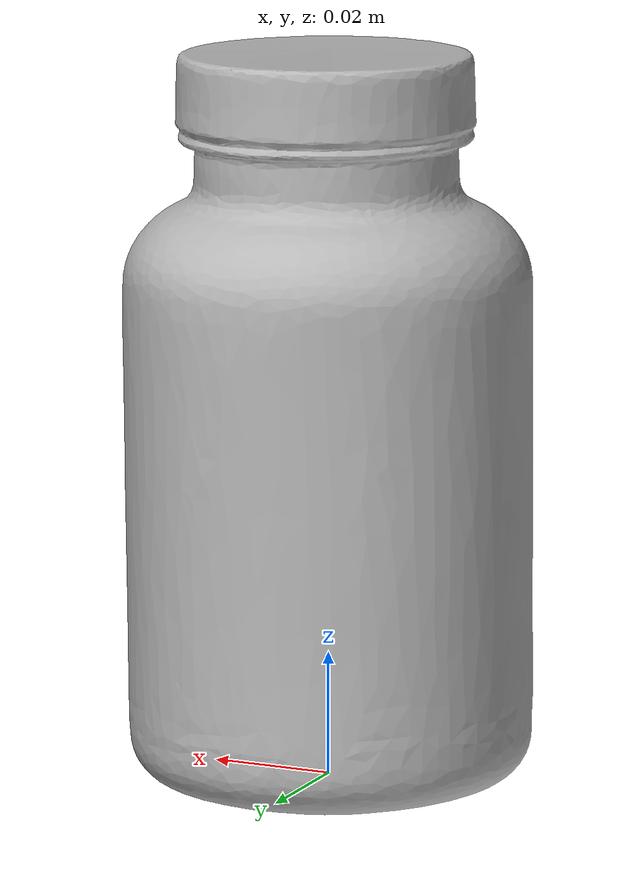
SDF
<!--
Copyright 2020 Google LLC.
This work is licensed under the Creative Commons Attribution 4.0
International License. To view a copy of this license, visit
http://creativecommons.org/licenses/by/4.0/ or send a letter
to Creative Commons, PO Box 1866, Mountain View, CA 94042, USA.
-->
<?xml version="1.0" ?>
<sdf version="1.6">
  <model name="Jarrow_Glucosamine_Chondroitin_Combination_120_Caps">
    <link name="link_0">
      <visual name="visual">
        <geometry>
          <mesh>
            <uri>meshes/model.obj</uri>
          </mesh>
        </geometry>
      </visual>
      <collision name="collision_0">
        <geometry>
          <mesh>
            <uri>meshes/model.obj</uri>
          </mesh>
        </geometry>
      </collision>
    </link>
  </model>
</sdf>
